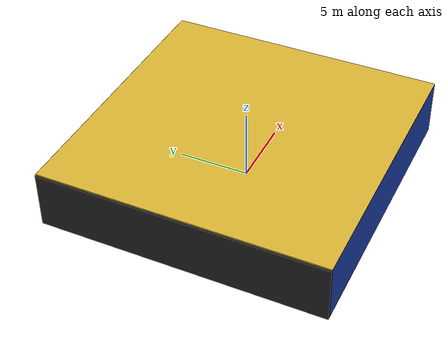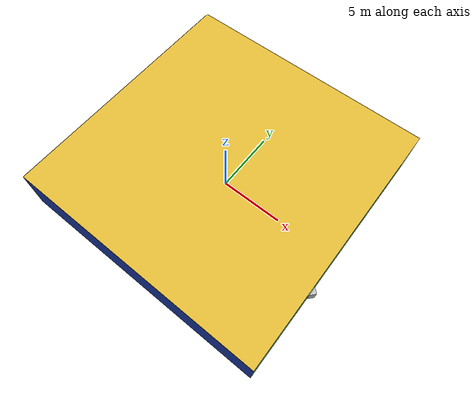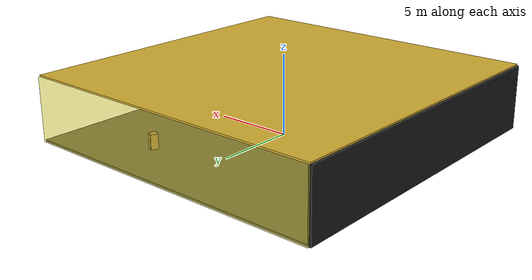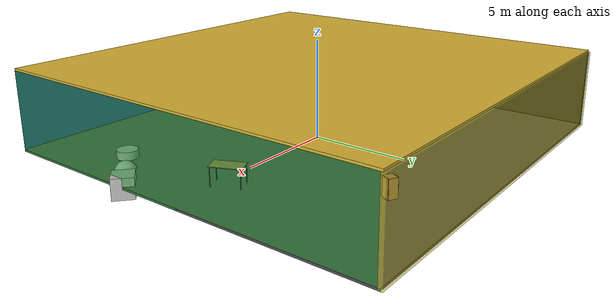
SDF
<sdf version="1.4">
 <world name="default">
  <physics type="ode">
   <max_step_size>0.001</max_step_size>
   <real_time_factor>1</real_time_factor>
   <real_time_update_rate>1000</real_time_update_rate>
   <gravity>0 0 -9.8</gravity>
  </physics>
  <scene><ambient>0.4 0.4 0.4 1</ambient><background>0.7 0.7 0.7 1</background><shadows>1</shadows></scene>
  <model name="Surrounding">
   <static>1</static>
   <link name="Ceiling">
    <collision name="Ceiling_Collision"><geometry><box><size>20 20 0.1</size></box></geometry></collision>
    <visual name="Ceiling_Visual">
     <geometry><box><size>20 20 0.1</size></box></geometry>
     <material>
      <script><uri>file://media/materials/scripts/gazebo.material</uri><name>Gazebo/Gold</name></script>
     </material>
    </visual>
    <pose>0 0 4.05 0 0 0</pose>
   </link>
   <link name="Wall_South">
    <collision name="Wall_South_Collision">
     <geometry><box><size>20 0 4</size></box></geometry>
     <pose>0 0 2 0 -0 0</pose>
    </collision>
    <visual name="Wall_South_Visual">
     <pose>0 0 2 0 -0 0</pose>
     <geometry><box><size>20 0 4</size></box></geometry>
     <material>
      <script><uri>file://media/materials/scripts/gazebo.material</uri><name>Gazebo/BlueLaser</name></script>
     </material>
    </visual>
    <velocity_decay><linear>0</linear><angular>0</angular></velocity_decay>
    <pose>0 -10 0 0 -0 0</pose>
   </link>
   <link name="Wall_East">
    <collision name="Wall_21_Collision">
     <geometry><box><size>20 0 4</size></box></geometry>
     <pose>0 0 2 0 -0 0</pose>
    </collision>
    <visual name="Wall_21_Visual">
     <pose>0 0 2 0 -0 0</pose>
     <geometry><box><size>20 0 4</size></box></geometry>
     <material>
      <script><uri>file://media/materials/scripts/gazebo.material</uri><name>Gazebo/GreenTransparent</name></script>
     </material>
    </visual>
    <velocity_decay><linear>0</linear><angular>0</angular></velocity_decay>
    <pose>10 0 0 0 -0 1.5708</pose>
   </link>
   <link name="Wall_North">
    <collision name="Wall_22_Collision">
     <geometry><box><size>20 0.2 4</size></box></geometry>
     <pose>0 0 2 0 -0 0</pose>
    </collision>
    <visual name="Wall_22_Visual">
     <pose>0 0 2 0 -0 0</pose>
     <geometry><box><size>20 0.2 4</size></box></geometry>
     <material>
      <script>
       <uri>file://media/materials/scripts/gazebo.material</uri>
       <name>Gazebo/YellowTransparent</name>
      </script>
     </material>
    </visual>
    <velocity_decay><linear>0</linear><angular>0</angular></velocity_decay>
    <pose>0 10 0 0 -0 0</pose>
   </link>
   <link name="Wall_West">
    <collision name="Wall_23_Collision">
     <geometry><box><size>20 0.2 4</size></box></geometry>
     <pose>0 0 2 0 -0 0</pose>
    </collision>
    <visual name="Wall_23_Visual">
     <pose>0 0 2 0 -0 0</pose>
     <geometry><box><size>20 0.2 4</size></box></geometry>
     <material>
      <script><uri>file://media/materials/scripts/gazebo.material</uri><name>Gazebo/Black</name></script>
     </material>
    </visual>
    <velocity_decay><linear>0</linear><angular>0</angular></velocity_decay>
    <pose>-10 0 0 0 0 -1.5708</pose>
   </link>
   <link name="Ground_link">
    <collision name="collision">
     <pose>0 0 .05 0 -0 0</pose>
     <geometry><box><size>20 20 0.1</size></box></geometry>
    </collision>
    <visual name="visual">
     <pose>0 0 .05 0 -0 0</pose>
     <geometry><box><size>20 20 0.1</size></box></geometry>
     <material>
      <script><uri>file://media/materials/scripts/gazebo.material</uri><name>Gazebo/Road</name></script>
     </material>
    </visual>
   </link>
   <static>1</static>
  </model>
  <spherical_coordinates>
   <surface_model>EARTH_WGS84</surface_model>
   <latitude_deg>0</latitude_deg>
   <longitude_deg>0</longitude_deg>
   <elevation>0</elevation>
   <heading_deg>0</heading_deg>
  </spherical_coordinates>
  <light name="lightball_0" type="diffuse">
   <diffuse>0.8 0.8 0.8 1</diffuse>
   <specular>0.2 0.2 0.2 1</specular>
   <attenuation>
    <range>100</range>
    <constant>0.7</constant>
    <linear>0.01</linear>
    <quadratic>0.001</quadratic>
   </attenuation>
   <direction>-0.5 0.1 -0.9</direction>
   <pose>2.84643327659 -3.33956094981 3.33333929975 0 0 0</pose>
  </light>
  <light name="lightball_1" type="diffuse">
   <diffuse>0.8 0.8 0.8 1</diffuse>
   <specular>0.2 0.2 0.2 1</specular>
   <attenuation>
    <range>100</range>
    <constant>0.7</constant>
    <linear>0.01</linear>
    <quadratic>0.001</quadratic>
   </attenuation>
   <direction>-0.5 0.1 -0.9</direction>
   <pose>-1.84168796456 -0.900240927144 1.06247679456 0 0 0</pose>
  </light>
  <light name="lightball_2" type="diffuse">
   <diffuse>0.8 0.8 0.8 1</diffuse>
   <specular>0.2 0.2 0.2 1</specular>
   <attenuation>
    <range>100</range>
    <constant>0.7</constant>
    <linear>0.01</linear>
    <quadratic>0.001</quadratic>
   </attenuation>
   <direction>-0.5 0.1 -0.9</direction>
   <pose>-9.84326685762 -3.14660581345 0.95555141106 0 0 0</pose>
  </light>
  <light name="lightball_3" type="diffuse">
   <diffuse>0.8 0.8 0.8 1</diffuse>
   <specular>0.2 0.2 0.2 1</specular>
   <attenuation>
    <range>100</range>
    <constant>0.7</constant>
    <linear>0.01</linear>
    <quadratic>0.001</quadratic>
   </attenuation>
   <direction>-0.5 0.1 -0.9</direction>
   <pose>5.89132563392 6.70851461294 0.96189438868 0 0 0</pose>
  </light>
  <include><uri>model://cabinet</uri><pose>4.09420309388 6.7556637763 0 0 0 1.09540152919</pose></include>
  <include>
   <uri>model://textured_shapes</uri>
   <pose>8.65600804678 -4.13067722214 0 0 0 2.41651850685</pose>
  </include>
  <include><uri>model://table</uri><pose>7.12492888394 0.70098175849 0 0 0 1.9890339948</pose></include>
 </world>
</sdf>

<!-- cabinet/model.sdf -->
<sdf version="1.5">
  <model name="cabinet">
    <static>true</static>
    <link name="cabinet_bottom_plate">
      <inertial>
        <pose>0 0 -1 0 0 0</pose>
        <inertia>
          <ixx>2.050000</ixx>
          <ixy>0</ixy>
          <ixz>0</ixz>
          <iyy>2.050000</iyy>
          <iyz>0</iyz>
          <izz>2.050000</izz>
        </inertia>
        <mass>25.000000</mass>
      </inertial>
      <collision name="cabinet_bottom_plate_geom">
        <pose>0 0 0.010000 0 0 0</pose>
        <geometry>
          <box>
            <size>0.450000 0.450000 0.020000</size>
          </box>
        </geometry>
      </collision>
      <visual name="cabinet_bottom_plate_geom_visual">
        <pose>0 0 0.010000 0 0 0</pose>
        <geometry>
          <box>
            <size>0.450000 0.450000 0.020000</size>
          </box>
        </geometry>
        <material>
          <script>
            <uri>model://media/materials/scripts/gazebo.material</uri>
            <name>Gazebo/Wood</name>
          </script>
        </material>
      </visual>
      <collision name="cabinet_bottom_plate_geom_cabinet_back_plate">
        <pose>0.235000 0 0.510000 0 0 0</pose>
        <geometry>
          <box>
            <size>0.020000 0.450000 1.020000</size>
          </box>
        </geometry>
      </collision>
      <visual name="cabinet_bottom_plate_geom_cabinet_back_plate_visual">
        <pose>0.235000 0 0.510000 0 0 0</pose>
        <geometry>
          <box>
            <size>0.020000 0.450000 1.020000</size>
          </box>
        </geometry>
        <material>
          <script>
            <uri>model://media/materials/scripts/gazebo.material</uri>
            <name>Gazebo/Wood</name>
          </script>
        </material>
      </visual>
      <collision name="cabinet_bottom_plate_geom_cabinet_left_plate">
        <pose>0 0.235000 0.510000 0 0 0</pose>
        <geometry>
          <box>
            <size>0.450000 0.020000 1.020000</size>
          </box>
        </geometry>
      </collision>
      <visual name="cabinet_bottom_plate_geom_cabinet_left_plate_visual">
        <pose>0 0.235000 0.510000 0 0 0</pose>
        <geometry>
          <box>
            <size>0.450000 0.020000 1.020000</size>
          </box>
        </geometry>
        <material>
          <script>
            <uri>model://media/materials/scripts/gazebo.material</uri>
            <name>Gazebo/Wood</name>
          </script>
        </material>
      </visual>
      <collision name="cabinet_bottom_plate_geom_cabinet_middle_plate">
        <pose>0 0 0.510000 0 0 0</pose>
        <geometry>
          <box>
            <size>0.450000 0.450000 0.020000</size>
          </box>
        </geometry>
      </collision>
      <visual name="cabinet_bottom_plate_geom_cabinet_middle_plate_visual">
        <pose>0 0 0.510000 0 0 0</pose>
        <geometry>
          <box>
            <size>0.450000 0.450000 0.020000</size>
          </box>
        </geometry>
        <material>
          <script>
            <uri>model://media/materials/scripts/gazebo.material</uri>
            <name>Gazebo/Wood</name>
          </script>
        </material>
      </visual>
      <collision name="cabinet_bottom_plate_geom_cabinet_right_plate">
        <pose>0 -0.235000 0.510000 0 0 0</pose>
        <geometry>
          <box>
            <size>0.450000 0.020000 1.020000</size>
          </box>
        </geometry>
      </collision>
      <visual name="cabinet_bottom_plate_geom_cabinet_right_plate_visual">
        <pose>0 -0.235000 0.510000 0 0 0</pose>
        <geometry>
          <box>
            <size>0.450000 0.020000 1.020000</size>
          </box>
        </geometry>
        <material>
          <script>
            <uri>model://media/materials/scripts/gazebo.material</uri>
            <name>Gazebo/Wood</name>
          </script>
        </material>
      </visual>
      <collision name="cabinet_bottom_plate_geom_cabinet_top_plate">
        <pose>0 0 1.010000 0 0 0</pose>
        <geometry>
          <box>
            <size>0.450000 0.450000 0.020000</size>
          </box>
        </geometry>
      </collision>
      <visual name="cabinet_bottom_plate_geom_cabinet_top_plate_visual">
        <pose>0 0 1.010000 0 0 0</pose>
        <geometry>
          <box>
            <size>0.450000 0.450000 0.020000</size>
          </box>
        </geometry>
        <material>
          <script>
            <uri>model://media/materials/scripts/gazebo.material</uri>
            <name>Gazebo/Wood</name>
          </script>
        </material>
      </visual>
    </link>
  </model>
</sdf>

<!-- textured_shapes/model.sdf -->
<sdf version="1.6">
  <model name="textured_shapes">
    <pose>0 0 0.5 0 0 0</pose>
    <link name="box">
      <pose>0 -1.5 0 0 0 0</pose>
      <collision name="collision">
        <geometry>
          <box>
            <size>1 1 1</size>
          </box>
        </geometry>
      </collision>
      <visual name="visual">
        <geometry>
          <box>
            <size>1 1 1</size>
          </box>
        </geometry>
        <material>
          <script>
            <uri>model://../model_source/models/textured_shapes/materials/scripts</uri>
            <uri>model://../model_source/models/textured_shapes/materials/textures</uri>
            <name>TexturedShape/Squares</name>
          </script>
        </material>
      </visual>
    </link>
    <link name="sphere">
      <collision name="collision">
        <geometry>
          <sphere>
            <radius>0.5</radius>
          </sphere>
        </geometry>
      </collision>
      <visual name="visual">
        <geometry>
          <sphere>
            <radius>0.5</radius>
          </sphere>
        </geometry>
        <material>
          <script>
            <uri>model://../model_source/models/textured_shapes/materials/scripts</uri>
            <uri>model://../model_source/models/textured_shapes/materials/textures</uri>
            <name>TexturedShape/Squares</name>
          </script>
        </material>
      </visual>
    </link>
    <link name="cylinder">
      <pose>0 1.5 0 0 0 0</pose>
      <collision name="collision">
        <geometry>
          <cylinder>
            <radius>0.5</radius>
            <length>1</length>
          </cylinder>
        </geometry>
      </collision>
      <visual name="visual">
        <geometry>
          <cylinder>
            <radius>0.5</radius>
            <length>1</length>
          </cylinder>
        </geometry>
        <material>
          <script>
            <uri>model://../model_source/models/textured_shapes/materials/scripts</uri>
            <uri>model://../model_source/models/textured_shapes/materials/textures</uri>
            <name>TexturedShape/Squares</name>
          </script>
        </material>
      </visual>
    </link>
  </model>
</sdf>

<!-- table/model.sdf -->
<sdf version="1.5">
  <model name="table">
    <static>true</static>
    <link name="link">
      <collision name="surface">
        <pose>0 0 1.0 0 0 0</pose>
        <geometry>
          <box>
            <size>1.5 0.8 0.03</size>
          </box>
        </geometry>
        <surface>
          <friction>
            <ode>
              <mu>0.6</mu>
              <mu2>0.6</mu2>
            </ode>
          </friction>
        </surface>
      </collision>
      <visual name="visual1">
        <pose>0 0 1.0 0 0 0</pose>
        <geometry>
          <box>
            <size>1.5 0.8 0.03</size>
          </box>
        </geometry>
        <material>
          <script>
            <uri>model://media/materials/scripts/gazebo.material</uri>
            <name>Gazebo/Wood</name>
          </script>
        </material>
      </visual>
      <collision name="front_left_leg">
        <pose>0.68 0.38 0.5 0 0 0</pose>
        <geometry>
          <cylinder>
            <radius>0.02</radius>
            <length>1.0</length>
          </cylinder>
        </geometry>
      </collision>
      <visual name="front_left_leg">
        <pose>0.68 0.38 0.5 0 0 0</pose>
        <geometry>
          <cylinder>
            <radius>0.02</radius>
            <length>1.0</length>
          </cylinder>
        </geometry>
        <material>
          <script>
            <uri>model://media/materials/scripts/gazebo.material</uri>
            <name>Gazebo/Grey</name>
          </script>
        </material>
      </visual>
      <collision name="front_right_leg">
        <pose>0.68 -0.38 0.5 0 0 0</pose>
        <geometry>
          <cylinder>
            <radius>0.02</radius>
            <length>1.0</length>
          </cylinder>
        </geometry>
      </collision>
      <visual name="front_right_leg">
        <pose>0.68 -0.38 0.5 0 0 0</pose>
        <geometry>
          <cylinder>
            <radius>0.02</radius>
            <length>1.0</length>
          </cylinder>
        </geometry>
        <material>
          <script>
            <uri>model://media/materials/scripts/gazebo.material</uri>
            <name>Gazebo/Grey</name>
          </script>
        </material>
      </visual>
      <collision name="back_right_leg">
        <pose>-0.68 -0.38 0.5 0 0 0</pose>
        <geometry>
          <cylinder>
            <radius>0.02</radius>
            <length>1.0</length>
          </cylinder>
        </geometry>
      </collision>
      <visual name="back_right_leg">
        <pose>-0.68 -0.38 0.5 0 0 0</pose>
        <geometry>
          <cylinder>
            <radius>0.02</radius>
            <length>1.0</length>
          </cylinder>
        </geometry>
        <material>
          <script>
            <uri>model://media/materials/scripts/gazebo.material</uri>
            <name>Gazebo/Grey</name>
          </script>
        </material>
      </visual>
      <collision name="back_left_leg">
        <pose>-0.68 0.38 0.5 0 0 0</pose>
        <geometry>
          <cylinder>
            <radius>0.02</radius>
            <length>1.0</length>
          </cylinder>
        </geometry>
      </collision>
      <visual name="back_left_leg">
        <pose>-0.68 0.38 0.5 0 0 0</pose>
        <geometry>
          <cylinder>
            <radius>0.02</radius>
            <length>1.0</length>
          </cylinder>
        </geometry>
        <material>
          <script>
            <uri>model://media/materials/scripts/gazebo.material</uri>
            <name>Gazebo/Grey</name>
          </script>
        </material>
      </visual>
    </link>
  </model>
</sdf>
